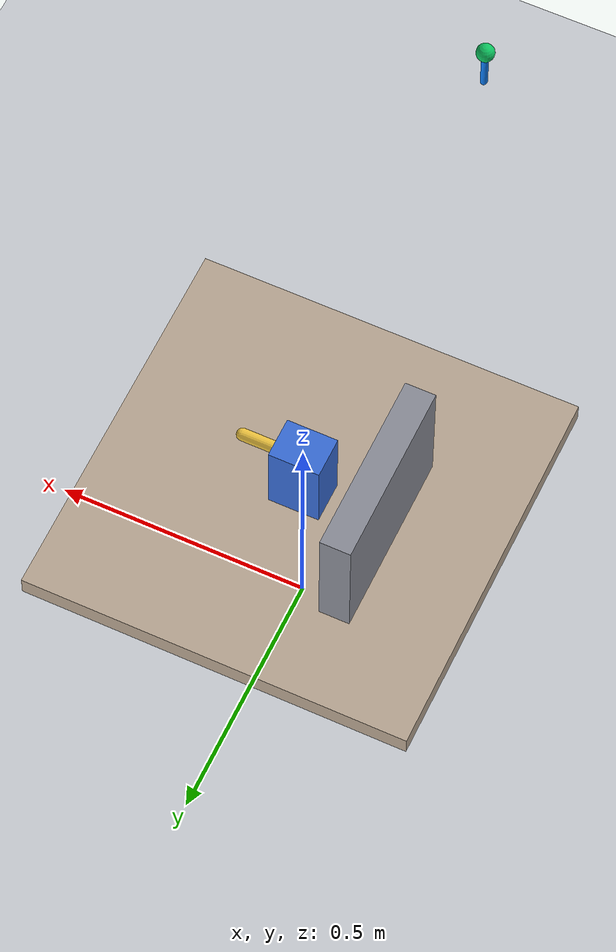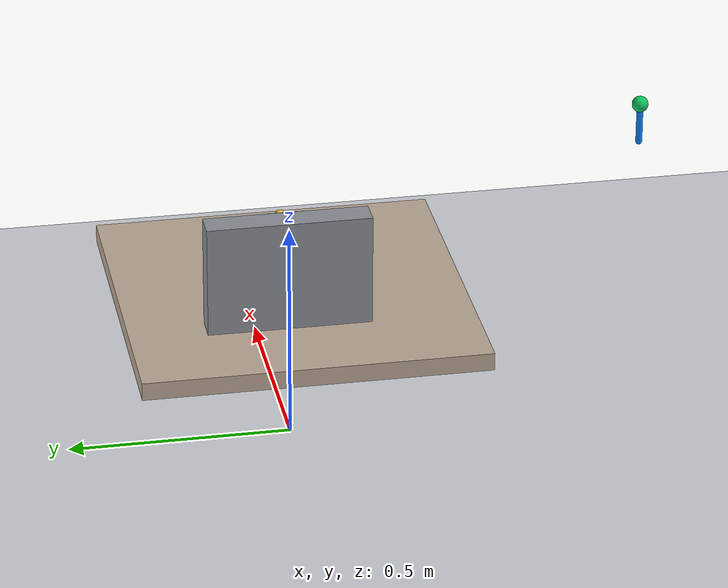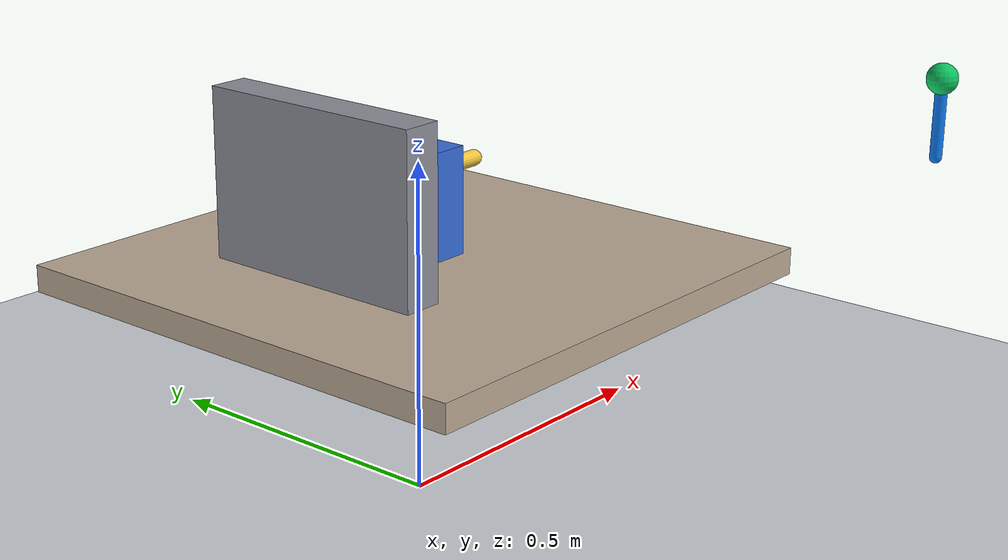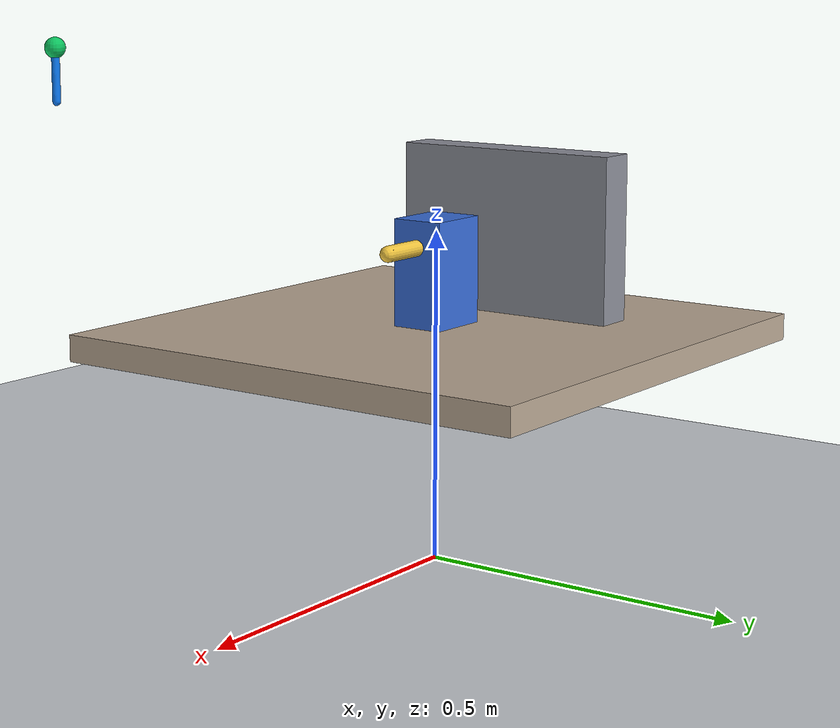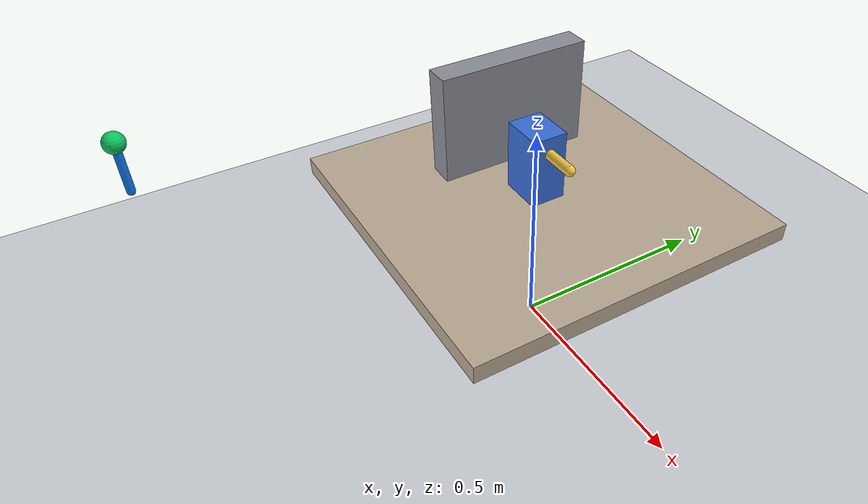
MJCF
<mujoco model="next_best_view_scene">
  <compiler angle="degree" coordinate="local"/>
  <option timestep="0.01" gravity="0 0 -9.81"/>

  <visual>
    <global offwidth="640" offheight="480"/>
    <quality shadowsize="2048"/>
  </visual>

  <asset>
    <texture name="skybox" type="skybox" builtin="gradient" rgb1="0.95 0.97 1.0" rgb2="0.65 0.75 0.92" width="256" height="256"/>
    <texture name="floor_grid" type="2d" builtin="checker" width="512" height="512" rgb1="0.87 0.88 0.90" rgb2="0.72 0.74 0.77"/>
    <material name="floor_mat" texture="floor_grid" texrepeat="4 4" reflectance="0.1"/>
    <material name="table_mat" rgba="0.73 0.66 0.58 1"/>
    <material name="target_blue" rgba="0.22 0.43 0.85 1"/>
    <material name="target_yellow" rgba="0.95 0.78 0.25 1"/>
    <material name="occluder_mat" rgba="0.55 0.56 0.60 1"/>
  </asset>

  <worldbody>
    <light name="sun" pos="0 0 2.2" dir="0 0 -1" diffuse="1 1 1" specular="0.2 0.2 0.2"/>
    <geom name="floor" type="plane" size="2 2 0.05" material="floor_mat"/>

    <body name="table" pos="0 0 0.34">
      <geom name="table_top" type="box" size="0.38 0.38 0.02" material="table_mat"/>
    </body>

    <body name="target_root" pos="0 0 0.44">
      <geom name="target_body" type="box" size="0.05 0.04 0.08" material="target_blue"/>
      <geom name="target_handle" type="capsule" fromto="0.05 0.00 0.04 0.12 0.00 0.04" size="0.012" material="target_yellow"/>
    </body>

    <body name="occluder" pos="-0.16 0.03 0.47">
      <geom name="occluder_panel" type="box" size="0.03 0.18 0.14" material="occluder_mat"/>
    </body>

    <body name="camera_rig" mocap="true" pos="0 -0.78 0.74">
      <geom name="camera_marker_body" type="sphere" size="0.018" rgba="0.05 0.78 0.38 1" contype="0" conaffinity="0"/>
      <geom name="camera_marker_forward" type="capsule" fromto="0 0 0 0 0 -0.09" size="0.007" rgba="0.05 0.48 0.95 1" contype="0" conaffinity="0"/>
      <camera name="active_cam" pos="0 0 0" quat="1 0 0 0" fovy="55"/>
    </body>
  </worldbody>
</mujoco>
